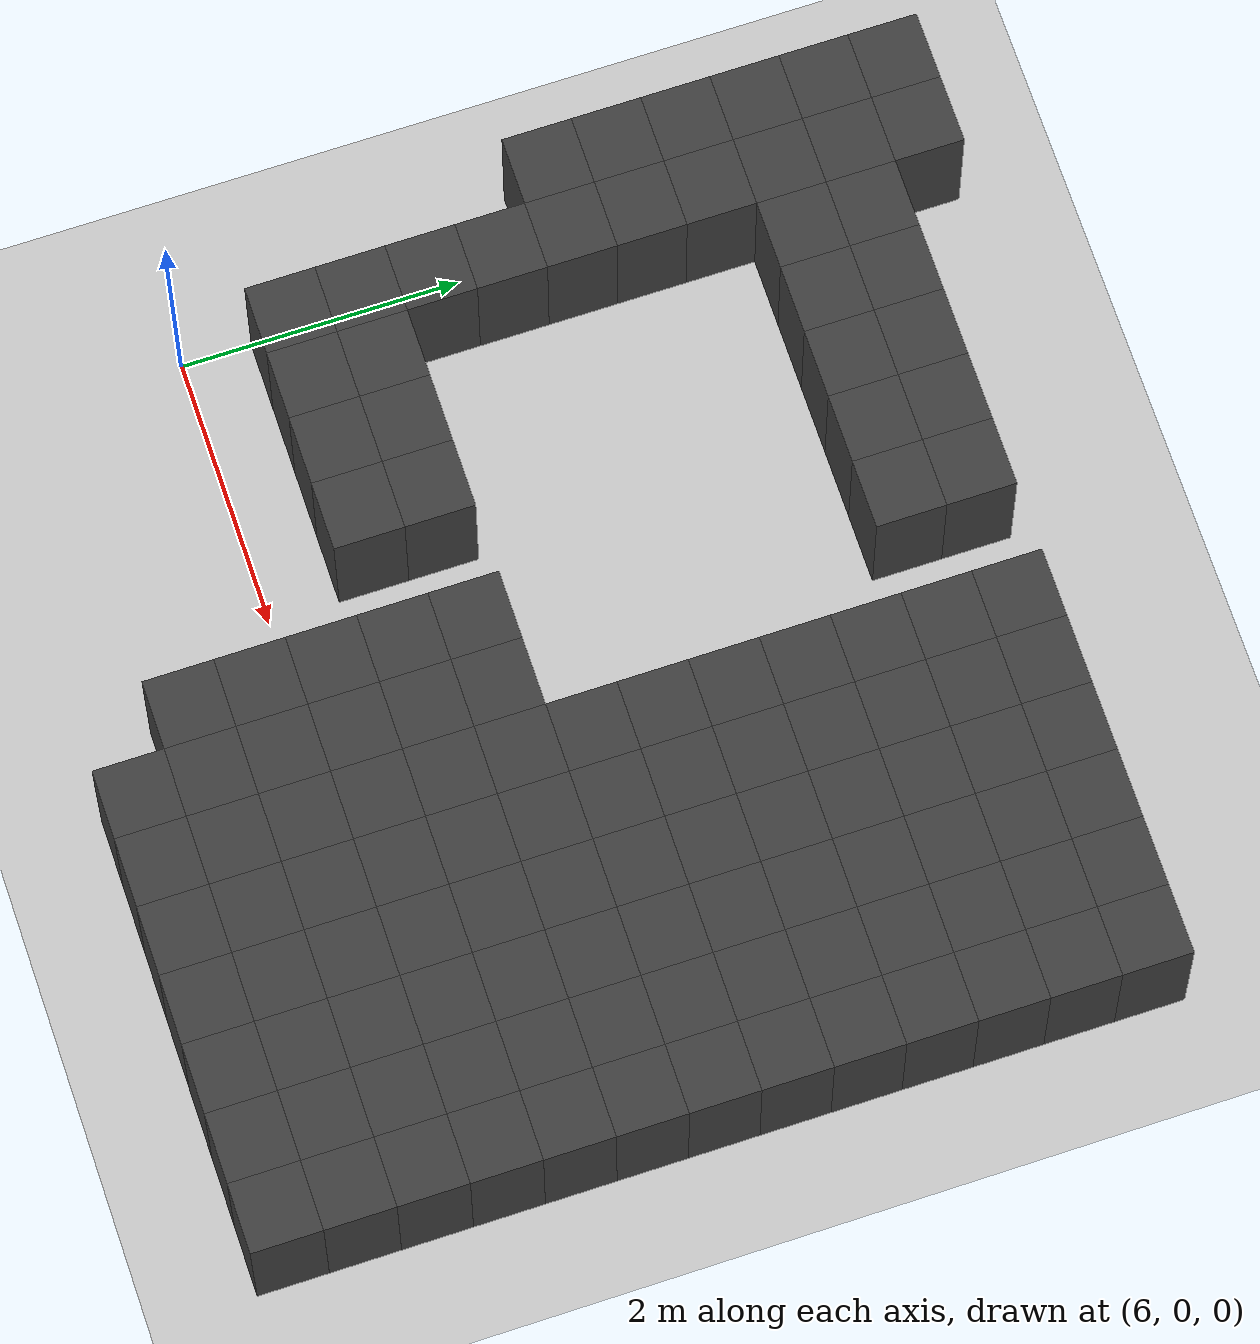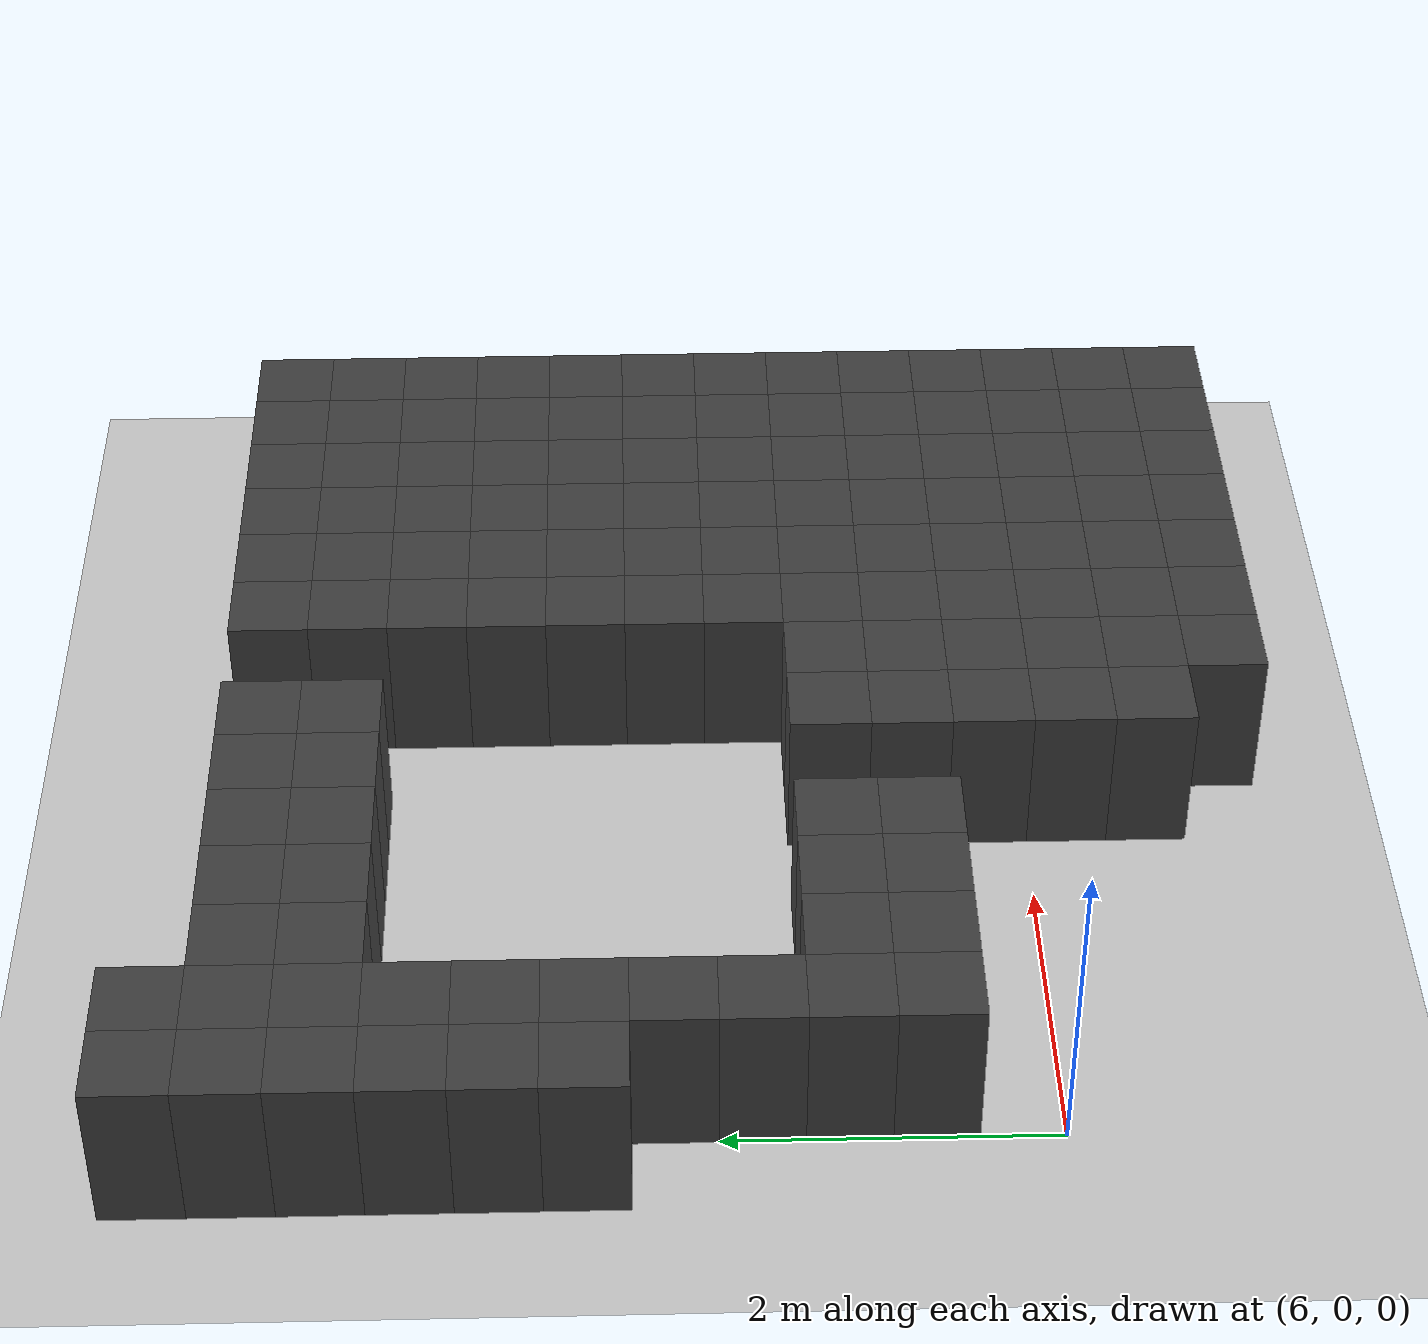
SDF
<sdf version="1.7">
 <world name="map_14706">
  <model name="ground_plane">
   <static>true</static>
   <link name="link">
    <collision name="collision">
     <geometry><plane><normal>0 0 1</normal><size>200 200</size></plane></geometry>
    </collision>
    <visual name="visual">
     <geometry><plane><normal>0 0 1</normal><size>200 200</size></plane></geometry>
     <material><ambient>0.8 0.8 0.8 1</ambient><diffuse>0.8 0.8 0.8 1</diffuse></material>
    </visual>
   </link>
  </model>
  <model name="maze_environment">
   <static>true</static>
   <link name="wall_446">
    <pose>5.750 5.250 0.500 0 0 0</pose>
    <collision name="col"><geometry><box><size>0.5 0.5 1.0</size></box></geometry></collision>
    <visual name="vis">
     <geometry><box><size>0.5 0.5 1.0</size></box></geometry>
     <material><ambient>0.15 0.15 0.15 1</ambient><diffuse>0.25 0.25 0.25 1</diffuse></material>
    </visual>
   </link>
   <link name="wall_447">
    <pose>6.250 5.250 0.500 0 0 0</pose>
    <collision name="col"><geometry><box><size>0.5 0.5 1.0</size></box></geometry></collision>
    <visual name="vis">
     <geometry><box><size>0.5 0.5 1.0</size></box></geometry>
     <material><ambient>0.15 0.15 0.15 1</ambient><diffuse>0.25 0.25 0.25 1</diffuse></material>
    </visual>
   </link>
   <link name="wall_486">
    <pose>5.750 4.750 0.500 0 0 0</pose>
    <collision name="col"><geometry><box><size>0.5 0.5 1.0</size></box></geometry></collision>
    <visual name="vis">
     <geometry><box><size>0.5 0.5 1.0</size></box></geometry>
     <material><ambient>0.15 0.15 0.15 1</ambient><diffuse>0.25 0.25 0.25 1</diffuse></material>
    </visual>
   </link>
   <link name="wall_487">
    <pose>6.250 4.750 0.500 0 0 0</pose>
    <collision name="col"><geometry><box><size>0.5 0.5 1.0</size></box></geometry></collision>
    <visual name="vis">
     <geometry><box><size>0.5 0.5 1.0</size></box></geometry>
     <material><ambient>0.15 0.15 0.15 1</ambient><diffuse>0.25 0.25 0.25 1</diffuse></material>
    </visual>
   </link>
   <link name="wall_488">
    <pose>6.750 4.750 0.500 0 0 0</pose>
    <collision name="col"><geometry><box><size>0.5 0.5 1.0</size></box></geometry></collision>
    <visual name="vis">
     <geometry><box><size>0.5 0.5 1.0</size></box></geometry>
     <material><ambient>0.15 0.15 0.15 1</ambient><diffuse>0.25 0.25 0.25 1</diffuse></material>
    </visual>
   </link>
   <link name="wall_489">
    <pose>7.250 4.750 0.500 0 0 0</pose>
    <collision name="col"><geometry><box><size>0.5 0.5 1.0</size></box></geometry></collision>
    <visual name="vis">
     <geometry><box><size>0.5 0.5 1.0</size></box></geometry>
     <material><ambient>0.15 0.15 0.15 1</ambient><diffuse>0.25 0.25 0.25 1</diffuse></material>
    </visual>
   </link>
   <link name="wall_490">
    <pose>7.750 4.750 0.500 0 0 0</pose>
    <collision name="col"><geometry><box><size>0.5 0.5 1.0</size></box></geometry></collision>
    <visual name="vis">
     <geometry><box><size>0.5 0.5 1.0</size></box></geometry>
     <material><ambient>0.15 0.15 0.15 1</ambient><diffuse>0.25 0.25 0.25 1</diffuse></material>
    </visual>
   </link>
   <link name="wall_491">
    <pose>8.250 4.750 0.500 0 0 0</pose>
    <collision name="col"><geometry><box><size>0.5 0.5 1.0</size></box></geometry></collision>
    <visual name="vis">
     <geometry><box><size>0.5 0.5 1.0</size></box></geometry>
     <material><ambient>0.15 0.15 0.15 1</ambient><diffuse>0.25 0.25 0.25 1</diffuse></material>
    </visual>
   </link>
   <link name="wall_492">
    <pose>8.750 4.750 0.500 0 0 0</pose>
    <collision name="col"><geometry><box><size>0.5 0.5 1.0</size></box></geometry></collision>
    <visual name="vis">
     <geometry><box><size>0.5 0.5 1.0</size></box></geometry>
     <material><ambient>0.15 0.15 0.15 1</ambient><diffuse>0.25 0.25 0.25 1</diffuse></material>
    </visual>
   </link>
   <link name="wall_493">
    <pose>9.750 4.750 0.500 0 0 0</pose>
    <collision name="col"><geometry><box><size>0.5 0.5 1.0</size></box></geometry></collision>
    <visual name="vis">
     <geometry><box><size>0.5 0.5 1.0</size></box></geometry>
     <material><ambient>0.15 0.15 0.15 1</ambient><diffuse>0.25 0.25 0.25 1</diffuse></material>
    </visual>
   </link>
   <link name="wall_494">
    <pose>10.250 4.750 0.500 0 0 0</pose>
    <collision name="col"><geometry><box><size>0.5 0.5 1.0</size></box></geometry></collision>
    <visual name="vis">
     <geometry><box><size>0.5 0.5 1.0</size></box></geometry>
     <material><ambient>0.15 0.15 0.15 1</ambient><diffuse>0.25 0.25 0.25 1</diffuse></material>
    </visual>
   </link>
   <link name="wall_495">
    <pose>10.750 4.750 0.500 0 0 0</pose>
    <collision name="col"><geometry><box><size>0.5 0.5 1.0</size></box></geometry></collision>
    <visual name="vis">
     <geometry><box><size>0.5 0.5 1.0</size></box></geometry>
     <material><ambient>0.15 0.15 0.15 1</ambient><diffuse>0.25 0.25 0.25 1</diffuse></material>
    </visual>
   </link>
   <link name="wall_496">
    <pose>11.250 4.750 0.500 0 0 0</pose>
    <collision name="col"><geometry><box><size>0.5 0.5 1.0</size></box></geometry></collision>
    <visual name="vis">
     <geometry><box><size>0.5 0.5 1.0</size></box></geometry>
     <material><ambient>0.15 0.15 0.15 1</ambient><diffuse>0.25 0.25 0.25 1</diffuse></material>
    </visual>
   </link>
   <link name="wall_497">
    <pose>11.750 4.750 0.500 0 0 0</pose>
    <collision name="col"><geometry><box><size>0.5 0.5 1.0</size></box></geometry></collision>
    <visual name="vis">
     <geometry><box><size>0.5 0.5 1.0</size></box></geometry>
     <material><ambient>0.15 0.15 0.15 1</ambient><diffuse>0.25 0.25 0.25 1</diffuse></material>
    </visual>
   </link>
   <link name="wall_498">
    <pose>12.250 4.750 0.500 0 0 0</pose>
    <collision name="col"><geometry><box><size>0.5 0.5 1.0</size></box></geometry></collision>
    <visual name="vis">
     <geometry><box><size>0.5 0.5 1.0</size></box></geometry>
     <material><ambient>0.15 0.15 0.15 1</ambient><diffuse>0.25 0.25 0.25 1</diffuse></material>
    </visual>
   </link>
   <link name="wall_525">
    <pose>5.750 4.250 0.500 0 0 0</pose>
    <collision name="col"><geometry><box><size>0.5 0.5 1.0</size></box></geometry></collision>
    <visual name="vis">
     <geometry><box><size>0.5 0.5 1.0</size></box></geometry>
     <material><ambient>0.15 0.15 0.15 1</ambient><diffuse>0.25 0.25 0.25 1</diffuse></material>
    </visual>
   </link>
   <link name="wall_526">
    <pose>6.250 4.250 0.500 0 0 0</pose>
    <collision name="col"><geometry><box><size>0.5 0.5 1.0</size></box></geometry></collision>
    <visual name="vis">
     <geometry><box><size>0.5 0.5 1.0</size></box></geometry>
     <material><ambient>0.15 0.15 0.15 1</ambient><diffuse>0.25 0.25 0.25 1</diffuse></material>
    </visual>
   </link>
   <link name="wall_527">
    <pose>6.750 4.250 0.500 0 0 0</pose>
    <collision name="col"><geometry><box><size>0.5 0.5 1.0</size></box></geometry></collision>
    <visual name="vis">
     <geometry><box><size>0.5 0.5 1.0</size></box></geometry>
     <material><ambient>0.15 0.15 0.15 1</ambient><diffuse>0.25 0.25 0.25 1</diffuse></material>
    </visual>
   </link>
   <link name="wall_528">
    <pose>7.250 4.250 0.500 0 0 0</pose>
    <collision name="col"><geometry><box><size>0.5 0.5 1.0</size></box></geometry></collision>
    <visual name="vis">
     <geometry><box><size>0.5 0.5 1.0</size></box></geometry>
     <material><ambient>0.15 0.15 0.15 1</ambient><diffuse>0.25 0.25 0.25 1</diffuse></material>
    </visual>
   </link>
   <link name="wall_529">
    <pose>7.750 4.250 0.500 0 0 0</pose>
    <collision name="col"><geometry><box><size>0.5 0.5 1.0</size></box></geometry></collision>
    <visual name="vis">
     <geometry><box><size>0.5 0.5 1.0</size></box></geometry>
     <material><ambient>0.15 0.15 0.15 1</ambient><diffuse>0.25 0.25 0.25 1</diffuse></material>
    </visual>
   </link>
   <link name="wall_530">
    <pose>8.250 4.250 0.500 0 0 0</pose>
    <collision name="col"><geometry><box><size>0.5 0.5 1.0</size></box></geometry></collision>
    <visual name="vis">
     <geometry><box><size>0.5 0.5 1.0</size></box></geometry>
     <material><ambient>0.15 0.15 0.15 1</ambient><diffuse>0.25 0.25 0.25 1</diffuse></material>
    </visual>
   </link>
   <link name="wall_531">
    <pose>8.750 4.250 0.500 0 0 0</pose>
    <collision name="col"><geometry><box><size>0.5 0.5 1.0</size></box></geometry></collision>
    <visual name="vis">
     <geometry><box><size>0.5 0.5 1.0</size></box></geometry>
     <material><ambient>0.15 0.15 0.15 1</ambient><diffuse>0.25 0.25 0.25 1</diffuse></material>
    </visual>
   </link>
   <link name="wall_532">
    <pose>9.750 4.250 0.500 0 0 0</pose>
    <collision name="col"><geometry><box><size>0.5 0.5 1.0</size></box></geometry></collision>
    <visual name="vis">
     <geometry><box><size>0.5 0.5 1.0</size></box></geometry>
     <material><ambient>0.15 0.15 0.15 1</ambient><diffuse>0.25 0.25 0.25 1</diffuse></material>
    </visual>
   </link>
   <link name="wall_533">
    <pose>10.250 4.250 0.500 0 0 0</pose>
    <collision name="col"><geometry><box><size>0.5 0.5 1.0</size></box></geometry></collision>
    <visual name="vis">
     <geometry><box><size>0.5 0.5 1.0</size></box></geometry>
     <material><ambient>0.15 0.15 0.15 1</ambient><diffuse>0.25 0.25 0.25 1</diffuse></material>
    </visual>
   </link>
   <link name="wall_534">
    <pose>10.750 4.250 0.500 0 0 0</pose>
    <collision name="col"><geometry><box><size>0.5 0.5 1.0</size></box></geometry></collision>
    <visual name="vis">
     <geometry><box><size>0.5 0.5 1.0</size></box></geometry>
     <material><ambient>0.15 0.15 0.15 1</ambient><diffuse>0.25 0.25 0.25 1</diffuse></material>
    </visual>
   </link>
   <link name="wall_535">
    <pose>11.250 4.250 0.500 0 0 0</pose>
    <collision name="col"><geometry><box><size>0.5 0.5 1.0</size></box></geometry></collision>
    <visual name="vis">
     <geometry><box><size>0.5 0.5 1.0</size></box></geometry>
     <material><ambient>0.15 0.15 0.15 1</ambient><diffuse>0.25 0.25 0.25 1</diffuse></material>
    </visual>
   </link>
   <link name="wall_536">
    <pose>11.750 4.250 0.500 0 0 0</pose>
    <collision name="col"><geometry><box><size>0.5 0.5 1.0</size></box></geometry></collision>
    <visual name="vis">
     <geometry><box><size>0.5 0.5 1.0</size></box></geometry>
     <material><ambient>0.15 0.15 0.15 1</ambient><diffuse>0.25 0.25 0.25 1</diffuse></material>
    </visual>
   </link>
   <link name="wall_537">
    <pose>12.250 4.250 0.500 0 0 0</pose>
    <collision name="col"><geometry><box><size>0.5 0.5 1.0</size></box></geometry></collision>
    <visual name="vis">
     <geometry><box><size>0.5 0.5 1.0</size></box></geometry>
     <material><ambient>0.15 0.15 0.15 1</ambient><diffuse>0.25 0.25 0.25 1</diffuse></material>
    </visual>
   </link>
   <link name="wall_560">
    <pose>5.750 3.750 0.500 0 0 0</pose>
    <collision name="col"><geometry><box><size>0.5 0.5 1.0</size></box></geometry></collision>
    <visual name="vis">
     <geometry><box><size>0.5 0.5 1.0</size></box></geometry>
     <material><ambient>0.15 0.15 0.15 1</ambient><diffuse>0.25 0.25 0.25 1</diffuse></material>
    </visual>
   </link>
   <link name="wall_561">
    <pose>6.250 3.750 0.500 0 0 0</pose>
    <collision name="col"><geometry><box><size>0.5 0.5 1.0</size></box></geometry></collision>
    <visual name="vis">
     <geometry><box><size>0.5 0.5 1.0</size></box></geometry>
     <material><ambient>0.15 0.15 0.15 1</ambient><diffuse>0.25 0.25 0.25 1</diffuse></material>
    </visual>
   </link>
   <link name="wall_562">
    <pose>9.750 3.750 0.500 0 0 0</pose>
    <collision name="col"><geometry><box><size>0.5 0.5 1.0</size></box></geometry></collision>
    <visual name="vis">
     <geometry><box><size>0.5 0.5 1.0</size></box></geometry>
     <material><ambient>0.15 0.15 0.15 1</ambient><diffuse>0.25 0.25 0.25 1</diffuse></material>
    </visual>
   </link>
   <link name="wall_563">
    <pose>10.250 3.750 0.500 0 0 0</pose>
    <collision name="col"><geometry><box><size>0.5 0.5 1.0</size></box></geometry></collision>
    <visual name="vis">
     <geometry><box><size>0.5 0.5 1.0</size></box></geometry>
     <material><ambient>0.15 0.15 0.15 1</ambient><diffuse>0.25 0.25 0.25 1</diffuse></material>
    </visual>
   </link>
   <link name="wall_564">
    <pose>10.750 3.750 0.500 0 0 0</pose>
    <collision name="col"><geometry><box><size>0.5 0.5 1.0</size></box></geometry></collision>
    <visual name="vis">
     <geometry><box><size>0.5 0.5 1.0</size></box></geometry>
     <material><ambient>0.15 0.15 0.15 1</ambient><diffuse>0.25 0.25 0.25 1</diffuse></material>
    </visual>
   </link>
   <link name="wall_565">
    <pose>11.250 3.750 0.500 0 0 0</pose>
    <collision name="col"><geometry><box><size>0.5 0.5 1.0</size></box></geometry></collision>
    <visual name="vis">
     <geometry><box><size>0.5 0.5 1.0</size></box></geometry>
     <material><ambient>0.15 0.15 0.15 1</ambient><diffuse>0.25 0.25 0.25 1</diffuse></material>
    </visual>
   </link>
   <link name="wall_566">
    <pose>11.750 3.750 0.500 0 0 0</pose>
    <collision name="col"><geometry><box><size>0.5 0.5 1.0</size></box></geometry></collision>
    <visual name="vis">
     <geometry><box><size>0.5 0.5 1.0</size></box></geometry>
     <material><ambient>0.15 0.15 0.15 1</ambient><diffuse>0.25 0.25 0.25 1</diffuse></material>
    </visual>
   </link>
   <link name="wall_567">
    <pose>12.250 3.750 0.500 0 0 0</pose>
    <collision name="col"><geometry><box><size>0.5 0.5 1.0</size></box></geometry></collision>
    <visual name="vis">
     <geometry><box><size>0.5 0.5 1.0</size></box></geometry>
     <material><ambient>0.15 0.15 0.15 1</ambient><diffuse>0.25 0.25 0.25 1</diffuse></material>
    </visual>
   </link>
   <link name="wall_592">
    <pose>5.750 3.250 0.500 0 0 0</pose>
    <collision name="col"><geometry><box><size>0.5 0.5 1.0</size></box></geometry></collision>
    <visual name="vis">
     <geometry><box><size>0.5 0.5 1.0</size></box></geometry>
     <material><ambient>0.15 0.15 0.15 1</ambient><diffuse>0.25 0.25 0.25 1</diffuse></material>
    </visual>
   </link>
   <link name="wall_593">
    <pose>6.250 3.250 0.500 0 0 0</pose>
    <collision name="col"><geometry><box><size>0.5 0.5 1.0</size></box></geometry></collision>
    <visual name="vis">
     <geometry><box><size>0.5 0.5 1.0</size></box></geometry>
     <material><ambient>0.15 0.15 0.15 1</ambient><diffuse>0.25 0.25 0.25 1</diffuse></material>
    </visual>
   </link>
   <link name="wall_594">
    <pose>9.750 3.250 0.500 0 0 0</pose>
    <collision name="col"><geometry><box><size>0.5 0.5 1.0</size></box></geometry></collision>
    <visual name="vis">
     <geometry><box><size>0.5 0.5 1.0</size></box></geometry>
     <material><ambient>0.15 0.15 0.15 1</ambient><diffuse>0.25 0.25 0.25 1</diffuse></material>
    </visual>
   </link>
   <link name="wall_595">
    <pose>10.250 3.250 0.500 0 0 0</pose>
    <collision name="col"><geometry><box><size>0.5 0.5 1.0</size></box></geometry></collision>
    <visual name="vis">
     <geometry><box><size>0.5 0.5 1.0</size></box></geometry>
     <material><ambient>0.15 0.15 0.15 1</ambient><diffuse>0.25 0.25 0.25 1</diffuse></material>
    </visual>
   </link>
   <link name="wall_596">
    <pose>10.750 3.250 0.500 0 0 0</pose>
    <collision name="col"><geometry><box><size>0.5 0.5 1.0</size></box></geometry></collision>
    <visual name="vis">
     <geometry><box><size>0.5 0.5 1.0</size></box></geometry>
     <material><ambient>0.15 0.15 0.15 1</ambient><diffuse>0.25 0.25 0.25 1</diffuse></material>
    </visual>
   </link>
   <link name="wall_597">
    <pose>11.250 3.250 0.500 0 0 0</pose>
    <collision name="col"><geometry><box><size>0.5 0.5 1.0</size></box></geometry></collision>
    <visual name="vis">
     <geometry><box><size>0.5 0.5 1.0</size></box></geometry>
     <material><ambient>0.15 0.15 0.15 1</ambient><diffuse>0.25 0.25 0.25 1</diffuse></material>
    </visual>
   </link>
   <link name="wall_598">
    <pose>11.750 3.250 0.500 0 0 0</pose>
    <collision name="col"><geometry><box><size>0.5 0.5 1.0</size></box></geometry></collision>
    <visual name="vis">
     <geometry><box><size>0.5 0.5 1.0</size></box></geometry>
     <material><ambient>0.15 0.15 0.15 1</ambient><diffuse>0.25 0.25 0.25 1</diffuse></material>
    </visual>
   </link>
   <link name="wall_599">
    <pose>12.250 3.250 0.500 0 0 0</pose>
    <collision name="col"><geometry><box><size>0.5 0.5 1.0</size></box></geometry></collision>
    <visual name="vis">
     <geometry><box><size>0.5 0.5 1.0</size></box></geometry>
     <material><ambient>0.15 0.15 0.15 1</ambient><diffuse>0.25 0.25 0.25 1</diffuse></material>
    </visual>
   </link>
   <link name="wall_623">
    <pose>5.750 2.750 0.500 0 0 0</pose>
    <collision name="col"><geometry><box><size>0.5 0.5 1.0</size></box></geometry></collision>
    <visual name="vis">
     <geometry><box><size>0.5 0.5 1.0</size></box></geometry>
     <material><ambient>0.15 0.15 0.15 1</ambient><diffuse>0.25 0.25 0.25 1</diffuse></material>
    </visual>
   </link>
   <link name="wall_624">
    <pose>6.250 2.750 0.500 0 0 0</pose>
    <collision name="col"><geometry><box><size>0.5 0.5 1.0</size></box></geometry></collision>
    <visual name="vis">
     <geometry><box><size>0.5 0.5 1.0</size></box></geometry>
     <material><ambient>0.15 0.15 0.15 1</ambient><diffuse>0.25 0.25 0.25 1</diffuse></material>
    </visual>
   </link>
   <link name="wall_625">
    <pose>9.750 2.750 0.500 0 0 0</pose>
    <collision name="col"><geometry><box><size>0.5 0.5 1.0</size></box></geometry></collision>
    <visual name="vis">
     <geometry><box><size>0.5 0.5 1.0</size></box></geometry>
     <material><ambient>0.15 0.15 0.15 1</ambient><diffuse>0.25 0.25 0.25 1</diffuse></material>
    </visual>
   </link>
   <link name="wall_626">
    <pose>10.250 2.750 0.500 0 0 0</pose>
    <collision name="col"><geometry><box><size>0.5 0.5 1.0</size></box></geometry></collision>
    <visual name="vis">
     <geometry><box><size>0.5 0.5 1.0</size></box></geometry>
     <material><ambient>0.15 0.15 0.15 1</ambient><diffuse>0.25 0.25 0.25 1</diffuse></material>
    </visual>
   </link>
   <link name="wall_627">
    <pose>10.750 2.750 0.500 0 0 0</pose>
    <collision name="col"><geometry><box><size>0.5 0.5 1.0</size></box></geometry></collision>
    <visual name="vis">
     <geometry><box><size>0.5 0.5 1.0</size></box></geometry>
     <material><ambient>0.15 0.15 0.15 1</ambient><diffuse>0.25 0.25 0.25 1</diffuse></material>
    </visual>
   </link>
   <link name="wall_628">
    <pose>11.250 2.750 0.500 0 0 0</pose>
    <collision name="col"><geometry><box><size>0.5 0.5 1.0</size></box></geometry></collision>
    <visual name="vis">
     <geometry><box><size>0.5 0.5 1.0</size></box></geometry>
     <material><ambient>0.15 0.15 0.15 1</ambient><diffuse>0.25 0.25 0.25 1</diffuse></material>
    </visual>
   </link>
   <link name="wall_629">
    <pose>11.750 2.750 0.500 0 0 0</pose>
    <collision name="col"><geometry><box><size>0.5 0.5 1.0</size></box></geometry></collision>
    <visual name="vis">
     <geometry><box><size>0.5 0.5 1.0</size></box></geometry>
     <material><ambient>0.15 0.15 0.15 1</ambient><diffuse>0.25 0.25 0.25 1</diffuse></material>
    </visual>
   </link>
   <link name="wall_630">
    <pose>12.250 2.750 0.500 0 0 0</pose>
    <collision name="col"><geometry><box><size>0.5 0.5 1.0</size></box></geometry></collision>
    <visual name="vis">
     <geometry><box><size>0.5 0.5 1.0</size></box></geometry>
     <material><ambient>0.15 0.15 0.15 1</ambient><diffuse>0.25 0.25 0.25 1</diffuse></material>
    </visual>
   </link>
   <link name="wall_655">
    <pose>6.250 2.250 0.500 0 0 0</pose>
    <collision name="col"><geometry><box><size>0.5 0.5 1.0</size></box></geometry></collision>
    <visual name="vis">
     <geometry><box><size>0.5 0.5 1.0</size></box></geometry>
     <material><ambient>0.15 0.15 0.15 1</ambient><diffuse>0.25 0.25 0.25 1</diffuse></material>
    </visual>
   </link>
   <link name="wall_656">
    <pose>9.750 2.250 0.500 0 0 0</pose>
    <collision name="col"><geometry><box><size>0.5 0.5 1.0</size></box></geometry></collision>
    <visual name="vis">
     <geometry><box><size>0.5 0.5 1.0</size></box></geometry>
     <material><ambient>0.15 0.15 0.15 1</ambient><diffuse>0.25 0.25 0.25 1</diffuse></material>
    </visual>
   </link>
   <link name="wall_657">
    <pose>10.250 2.250 0.500 0 0 0</pose>
    <collision name="col"><geometry><box><size>0.5 0.5 1.0</size></box></geometry></collision>
    <visual name="vis">
     <geometry><box><size>0.5 0.5 1.0</size></box></geometry>
     <material><ambient>0.15 0.15 0.15 1</ambient><diffuse>0.25 0.25 0.25 1</diffuse></material>
    </visual>
   </link>
   <link name="wall_658">
    <pose>10.750 2.250 0.500 0 0 0</pose>
    <collision name="col"><geometry><box><size>0.5 0.5 1.0</size></box></geometry></collision>
    <visual name="vis">
     <geometry><box><size>0.5 0.5 1.0</size></box></geometry>
     <material><ambient>0.15 0.15 0.15 1</ambient><diffuse>0.25 0.25 0.25 1</diffuse></material>
    </visual>
   </link>
   <link name="wall_659">
    <pose>11.250 2.250 0.500 0 0 0</pose>
    <collision name="col"><geometry><box><size>0.5 0.5 1.0</size></box></geometry></collision>
    <visual name="vis">
     <geometry><box><size>0.5 0.5 1.0</size></box></geometry>
     <material><ambient>0.15 0.15 0.15 1</ambient><diffuse>0.25 0.25 0.25 1</diffuse></material>
    </visual>
   </link>
   <link name="wall_660">
    <pose>11.750 2.250 0.500 0 0 0</pose>
    <collision name="col"><geometry><box><size>0.5 0.5 1.0</size></box></geometry></collision>
    <visual name="vis">
     <geometry><box><size>0.5 0.5 1.0</size></box></geometry>
     <material><ambient>0.15 0.15 0.15 1</ambient><diffuse>0.25 0.25 0.25 1</diffuse></material>
    </visual>
   </link>
   <link name="wall_661">
    <pose>12.250 2.250 0.500 0 0 0</pose>
    <collision name="col"><geometry><box><size>0.5 0.5 1.0</size></box></geometry></collision>
    <visual name="vis">
     <geometry><box><size>0.5 0.5 1.0</size></box></geometry>
     <material><ambient>0.15 0.15 0.15 1</ambient><diffuse>0.25 0.25 0.25 1</diffuse></material>
    </visual>
   </link>
   <link name="wall_691">
    <pose>6.250 1.750 0.500 0 0 0</pose>
    <collision name="col"><geometry><box><size>0.5 0.5 1.0</size></box></geometry></collision>
    <visual name="vis">
     <geometry><box><size>0.5 0.5 1.0</size></box></geometry>
     <material><ambient>0.15 0.15 0.15 1</ambient><diffuse>0.25 0.25 0.25 1</diffuse></material>
    </visual>
   </link>
   <link name="wall_692">
    <pose>9.750 1.750 0.500 0 0 0</pose>
    <collision name="col"><geometry><box><size>0.5 0.5 1.0</size></box></geometry></collision>
    <visual name="vis">
     <geometry><box><size>0.5 0.5 1.0</size></box></geometry>
     <material><ambient>0.15 0.15 0.15 1</ambient><diffuse>0.25 0.25 0.25 1</diffuse></material>
    </visual>
   </link>
   <link name="wall_693">
    <pose>10.250 1.750 0.500 0 0 0</pose>
    <collision name="col"><geometry><box><size>0.5 0.5 1.0</size></box></geometry></collision>
    <visual name="vis">
     <geometry><box><size>0.5 0.5 1.0</size></box></geometry>
     <material><ambient>0.15 0.15 0.15 1</ambient><diffuse>0.25 0.25 0.25 1</diffuse></material>
    </visual>
   </link>
   <link name="wall_694">
    <pose>10.750 1.750 0.500 0 0 0</pose>
    <collision name="col"><geometry><box><size>0.5 0.5 1.0</size></box></geometry></collision>
    <visual name="vis">
     <geometry><box><size>0.5 0.5 1.0</size></box></geometry>
     <material><ambient>0.15 0.15 0.15 1</ambient><diffuse>0.25 0.25 0.25 1</diffuse></material>
    </visual>
   </link>
   <link name="wall_695">
    <pose>11.250 1.750 0.500 0 0 0</pose>
    <collision name="col"><geometry><box><size>0.5 0.5 1.0</size></box></geometry></collision>
    <visual name="vis">
     <geometry><box><size>0.5 0.5 1.0</size></box></geometry>
     <material><ambient>0.15 0.15 0.15 1</ambient><diffuse>0.25 0.25 0.25 1</diffuse></material>
    </visual>
   </link>
   <link name="wall_696">
    <pose>11.750 1.750 0.500 0 0 0</pose>
    <collision name="col"><geometry><box><size>0.5 0.5 1.0</size></box></geometry></collision>
    <visual name="vis">
     <geometry><box><size>0.5 0.5 1.0</size></box></geometry>
     <material><ambient>0.15 0.15 0.15 1</ambient><diffuse>0.25 0.25 0.25 1</diffuse></material>
    </visual>
   </link>
   <link name="wall_697">
    <pose>12.250 1.750 0.500 0 0 0</pose>
    <collision name="col"><geometry><box><size>0.5 0.5 1.0</size></box></geometry></collision>
    <visual name="vis">
     <geometry><box><size>0.5 0.5 1.0</size></box></geometry>
     <material><ambient>0.15 0.15 0.15 1</ambient><diffuse>0.25 0.25 0.25 1</diffuse></material>
    </visual>
   </link>
   <link name="wall_727">
    <pose>6.250 1.250 0.500 0 0 0</pose>
    <collision name="col"><geometry><box><size>0.5 0.5 1.0</size></box></geometry></collision>
    <visual name="vis">
     <geometry><box><size>0.5 0.5 1.0</size></box></geometry>
     <material><ambient>0.15 0.15 0.15 1</ambient><diffuse>0.25 0.25 0.25 1</diffuse></material>
    </visual>
   </link>
   <link name="wall_728">
    <pose>6.750 1.250 0.500 0 0 0</pose>
    <collision name="col"><geometry><box><size>0.5 0.5 1.0</size></box></geometry></collision>
    <visual name="vis">
     <geometry><box><size>0.5 0.5 1.0</size></box></geometry>
     <material><ambient>0.15 0.15 0.15 1</ambient><diffuse>0.25 0.25 0.25 1</diffuse></material>
    </visual>
   </link>
   <link name="wall_729">
    <pose>7.250 1.250 0.500 0 0 0</pose>
    <collision name="col"><geometry><box><size>0.5 0.5 1.0</size></box></geometry></collision>
    <visual name="vis">
     <geometry><box><size>0.5 0.5 1.0</size></box></geometry>
     <material><ambient>0.15 0.15 0.15 1</ambient><diffuse>0.25 0.25 0.25 1</diffuse></material>
    </visual>
   </link>
   <link name="wall_730">
    <pose>7.750 1.250 0.500 0 0 0</pose>
    <collision name="col"><geometry><box><size>0.5 0.5 1.0</size></box></geometry></collision>
    <visual name="vis">
     <geometry><box><size>0.5 0.5 1.0</size></box></geometry>
     <material><ambient>0.15 0.15 0.15 1</ambient><diffuse>0.25 0.25 0.25 1</diffuse></material>
    </visual>
   </link>
   <link name="wall_731">
    <pose>8.750 1.250 0.500 0 0 0</pose>
    <collision name="col"><geometry><box><size>0.5 0.5 1.0</size></box></geometry></collision>
    <visual name="vis">
     <geometry><box><size>0.5 0.5 1.0</size></box></geometry>
     <material><ambient>0.15 0.15 0.15 1</ambient><diffuse>0.25 0.25 0.25 1</diffuse></material>
    </visual>
   </link>
   <link name="wall_732">
    <pose>9.250 1.250 0.500 0 0 0</pose>
    <collision name="col"><geometry><box><size>0.5 0.5 1.0</size></box></geometry></collision>
    <visual name="vis">
     <geometry><box><size>0.5 0.5 1.0</size></box></geometry>
     <material><ambient>0.15 0.15 0.15 1</ambient><diffuse>0.25 0.25 0.25 1</diffuse></material>
    </visual>
   </link>
   <link name="wall_733">
    <pose>9.750 1.250 0.500 0 0 0</pose>
    <collision name="col"><geometry><box><size>0.5 0.5 1.0</size></box></geometry></collision>
    <visual name="vis">
     <geometry><box><size>0.5 0.5 1.0</size></box></geometry>
     <material><ambient>0.15 0.15 0.15 1</ambient><diffuse>0.25 0.25 0.25 1</diffuse></material>
    </visual>
   </link>
   <link name="wall_734">
    <pose>10.250 1.250 0.500 0 0 0</pose>
    <collision name="col"><geometry><box><size>0.5 0.5 1.0</size></box></geometry></collision>
    <visual name="vis">
     <geometry><box><size>0.5 0.5 1.0</size></box></geometry>
     <material><ambient>0.15 0.15 0.15 1</ambient><diffuse>0.25 0.25 0.25 1</diffuse></material>
    </visual>
   </link>
   <link name="wall_735">
    <pose>10.750 1.250 0.500 0 0 0</pose>
    <collision name="col"><geometry><box><size>0.5 0.5 1.0</size></box></geometry></collision>
    <visual name="vis">
     <geometry><box><size>0.5 0.5 1.0</size></box></geometry>
     <material><ambient>0.15 0.15 0.15 1</ambient><diffuse>0.25 0.25 0.25 1</diffuse></material>
    </visual>
   </link>
   <link name="wall_736">
    <pose>11.250 1.250 0.500 0 0 0</pose>
    <collision name="col"><geometry><box><size>0.5 0.5 1.0</size></box></geometry></collision>
    <visual name="vis">
     <geometry><box><size>0.5 0.5 1.0</size></box></geometry>
     <material><ambient>0.15 0.15 0.15 1</ambient><diffuse>0.25 0.25 0.25 1</diffuse></material>
    </visual>
   </link>
   <link name="wall_737">
    <pose>11.750 1.250 0.500 0 0 0</pose>
    <collision name="col"><geometry><box><size>0.5 0.5 1.0</size></box></geometry></collision>
    <visual name="vis">
     <geometry><box><size>0.5 0.5 1.0</size></box></geometry>
     <material><ambient>0.15 0.15 0.15 1</ambient><diffuse>0.25 0.25 0.25 1</diffuse></material>
    </visual>
   </link>
   <link name="wall_738">
    <pose>12.250 1.250 0.500 0 0 0</pose>
    <collision name="col"><geometry><box><size>0.5 0.5 1.0</size></box></geometry></collision>
    <visual name="vis">
     <geometry><box><size>0.5 0.5 1.0</size></box></geometry>
     <material><ambient>0.15 0.15 0.15 1</ambient><diffuse>0.25 0.25 0.25 1</diffuse></material>
    </visual>
   </link>
   <link name="wall_768">
    <pose>6.250 0.750 0.500 0 0 0</pose>
    <collision name="col"><geometry><box><size>0.5 0.5 1.0</size></box></geometry></collision>
    <visual name="vis">
     <geometry><box><size>0.5 0.5 1.0</size></box></geometry>
     <material><ambient>0.15 0.15 0.15 1</ambient><diffuse>0.25 0.25 0.25 1</diffuse></material>
    </visual>
   </link>
   <link name="wall_769">
    <pose>6.750 0.750 0.500 0 0 0</pose>
    <collision name="col"><geometry><box><size>0.5 0.5 1.0</size></box></geometry></collision>
    <visual name="vis">
     <geometry><box><size>0.5 0.5 1.0</size></box></geometry>
     <material><ambient>0.15 0.15 0.15 1</ambient><diffuse>0.25 0.25 0.25 1</diffuse></material>
    </visual>
   </link>
   <link name="wall_770">
    <pose>7.250 0.750 0.500 0 0 0</pose>
    <collision name="col"><geometry><box><size>0.5 0.5 1.0</size></box></geometry></collision>
    <visual name="vis">
     <geometry><box><size>0.5 0.5 1.0</size></box></geometry>
     <material><ambient>0.15 0.15 0.15 1</ambient><diffuse>0.25 0.25 0.25 1</diffuse></material>
    </visual>
   </link>
   <link name="wall_771">
    <pose>7.750 0.750 0.500 0 0 0</pose>
    <collision name="col"><geometry><box><size>0.5 0.5 1.0</size></box></geometry></collision>
    <visual name="vis">
     <geometry><box><size>0.5 0.5 1.0</size></box></geometry>
     <material><ambient>0.15 0.15 0.15 1</ambient><diffuse>0.25 0.25 0.25 1</diffuse></material>
    </visual>
   </link>
   <link name="wall_772">
    <pose>8.750 0.750 0.500 0 0 0</pose>
    <collision name="col"><geometry><box><size>0.5 0.5 1.0</size></box></geometry></collision>
    <visual name="vis">
     <geometry><box><size>0.5 0.5 1.0</size></box></geometry>
     <material><ambient>0.15 0.15 0.15 1</ambient><diffuse>0.25 0.25 0.25 1</diffuse></material>
    </visual>
   </link>
   <link name="wall_773">
    <pose>9.250 0.750 0.500 0 0 0</pose>
    <collision name="col"><geometry><box><size>0.5 0.5 1.0</size></box></geometry></collision>
    <visual name="vis">
     <geometry><box><size>0.5 0.5 1.0</size></box></geometry>
     <material><ambient>0.15 0.15 0.15 1</ambient><diffuse>0.25 0.25 0.25 1</diffuse></material>
    </visual>
   </link>
   <link name="wall_774">
    <pose>9.750 0.750 0.500 0 0 0</pose>
    <collision name="col"><geometry><box><size>0.5 0.5 1.0</size></box></geometry></collision>
    <visual name="vis">
     <geometry><box><size>0.5 0.5 1.0</size></box></geometry>
     <material><ambient>0.15 0.15 0.15 1</ambient><diffuse>0.25 0.25 0.25 1</diffuse></material>
    </visual>
   </link>
   <link name="wall_775">
    <pose>10.250 0.750 0.500 0 0 0</pose>
    <collision name="col"><geometry><box><size>0.5 0.5 1.0</size></box></geometry></collision>
    <visual name="vis">
     <geometry><box><size>0.5 0.5 1.0</size></box></geometry>
     <material><ambient>0.15 0.15 0.15 1</ambient><diffuse>0.25 0.25 0.25 1</diffuse></material>
    </visual>
   </link>
   <link name="wall_776">
    <pose>10.750 0.750 0.500 0 0 0</pose>
    <collision name="col"><geometry><box><size>0.5 0.5 1.0</size></box></geometry></collision>
    <visual name="vis">
     <geometry><box><size>0.5 0.5 1.0</size></box></geometry>
     <material><ambient>0.15 0.15 0.15 1</ambient><diffuse>0.25 0.25 0.25 1</diffuse></material>
    </visual>
   </link>
   <link name="wall_777">
    <pose>11.250 0.750 0.500 0 0 0</pose>
    <collision name="col"><geometry><box><size>0.5 0.5 1.0</size></box></geometry></collision>
    <visual name="vis">
     <geometry><box><size>0.5 0.5 1.0</size></box></geometry>
     <material><ambient>0.15 0.15 0.15 1</ambient><diffuse>0.25 0.25 0.25 1</diffuse></material>
    </visual>
   </link>
   <link name="wall_778">
    <pose>11.750 0.750 0.500 0 0 0</pose>
    <collision name="col"><geometry><box><size>0.5 0.5 1.0</size></box></geometry></collision>
    <visual name="vis">
     <geometry><box><size>0.5 0.5 1.0</size></box></geometry>
     <material><ambient>0.15 0.15 0.15 1</ambient><diffuse>0.25 0.25 0.25 1</diffuse></material>
    </visual>
   </link>
   <link name="wall_779">
    <pose>12.250 0.750 0.500 0 0 0</pose>
    <collision name="col"><geometry><box><size>0.5 0.5 1.0</size></box></geometry></collision>
    <visual name="vis">
     <geometry><box><size>0.5 0.5 1.0</size></box></geometry>
     <material><ambient>0.15 0.15 0.15 1</ambient><diffuse>0.25 0.25 0.25 1</diffuse></material>
    </visual>
   </link>
   <link name="wall_807">
    <pose>8.750 0.250 0.500 0 0 0</pose>
    <collision name="col"><geometry><box><size>0.5 0.5 1.0</size></box></geometry></collision>
    <visual name="vis">
     <geometry><box><size>0.5 0.5 1.0</size></box></geometry>
     <material><ambient>0.15 0.15 0.15 1</ambient><diffuse>0.25 0.25 0.25 1</diffuse></material>
    </visual>
   </link>
   <link name="wall_808">
    <pose>9.250 0.250 0.500 0 0 0</pose>
    <collision name="col"><geometry><box><size>0.5 0.5 1.0</size></box></geometry></collision>
    <visual name="vis">
     <geometry><box><size>0.5 0.5 1.0</size></box></geometry>
     <material><ambient>0.15 0.15 0.15 1</ambient><diffuse>0.25 0.25 0.25 1</diffuse></material>
    </visual>
   </link>
   <link name="wall_809">
    <pose>9.750 0.250 0.500 0 0 0</pose>
    <collision name="col"><geometry><box><size>0.5 0.5 1.0</size></box></geometry></collision>
    <visual name="vis">
     <geometry><box><size>0.5 0.5 1.0</size></box></geometry>
     <material><ambient>0.15 0.15 0.15 1</ambient><diffuse>0.25 0.25 0.25 1</diffuse></material>
    </visual>
   </link>
   <link name="wall_810">
    <pose>10.250 0.250 0.500 0 0 0</pose>
    <collision name="col"><geometry><box><size>0.5 0.5 1.0</size></box></geometry></collision>
    <visual name="vis">
     <geometry><box><size>0.5 0.5 1.0</size></box></geometry>
     <material><ambient>0.15 0.15 0.15 1</ambient><diffuse>0.25 0.25 0.25 1</diffuse></material>
    </visual>
   </link>
   <link name="wall_811">
    <pose>10.750 0.250 0.500 0 0 0</pose>
    <collision name="col"><geometry><box><size>0.5 0.5 1.0</size></box></geometry></collision>
    <visual name="vis">
     <geometry><box><size>0.5 0.5 1.0</size></box></geometry>
     <material><ambient>0.15 0.15 0.15 1</ambient><diffuse>0.25 0.25 0.25 1</diffuse></material>
    </visual>
   </link>
   <link name="wall_812">
    <pose>11.250 0.250 0.500 0 0 0</pose>
    <collision name="col"><geometry><box><size>0.5 0.5 1.0</size></box></geometry></collision>
    <visual name="vis">
     <geometry><box><size>0.5 0.5 1.0</size></box></geometry>
     <material><ambient>0.15 0.15 0.15 1</ambient><diffuse>0.25 0.25 0.25 1</diffuse></material>
    </visual>
   </link>
   <link name="wall_813">
    <pose>11.750 0.250 0.500 0 0 0</pose>
    <collision name="col"><geometry><box><size>0.5 0.5 1.0</size></box></geometry></collision>
    <visual name="vis">
     <geometry><box><size>0.5 0.5 1.0</size></box></geometry>
     <material><ambient>0.15 0.15 0.15 1</ambient><diffuse>0.25 0.25 0.25 1</diffuse></material>
    </visual>
   </link>
   <link name="wall_814">
    <pose>12.250 0.250 0.500 0 0 0</pose>
    <collision name="col"><geometry><box><size>0.5 0.5 1.0</size></box></geometry></collision>
    <visual name="vis">
     <geometry><box><size>0.5 0.5 1.0</size></box></geometry>
     <material><ambient>0.15 0.15 0.15 1</ambient><diffuse>0.25 0.25 0.25 1</diffuse></material>
    </visual>
   </link>
   <link name="wall_849">
    <pose>8.750 -0.250 0.500 0 0 0</pose>
    <collision name="col"><geometry><box><size>0.5 0.5 1.0</size></box></geometry></collision>
    <visual name="vis">
     <geometry><box><size>0.5 0.5 1.0</size></box></geometry>
     <material><ambient>0.15 0.15 0.15 1</ambient><diffuse>0.25 0.25 0.25 1</diffuse></material>
    </visual>
   </link>
   <link name="wall_850">
    <pose>9.250 -0.250 0.500 0 0 0</pose>
    <collision name="col"><geometry><box><size>0.5 0.5 1.0</size></box></geometry></collision>
    <visual name="vis">
     <geometry><box><size>0.5 0.5 1.0</size></box></geometry>
     <material><ambient>0.15 0.15 0.15 1</ambient><diffuse>0.25 0.25 0.25 1</diffuse></material>
    </visual>
   </link>
   <link name="wall_851">
    <pose>9.750 -0.250 0.500 0 0 0</pose>
    <collision name="col"><geometry><box><size>0.5 0.5 1.0</size></box></geometry></collision>
    <visual name="vis">
     <geometry><box><size>0.5 0.5 1.0</size></box></geometry>
     <material><ambient>0.15 0.15 0.15 1</ambient><diffuse>0.25 0.25 0.25 1</diffuse></material>
    </visual>
   </link>
   <link name="wall_852">
    <pose>10.250 -0.250 0.500 0 0 0</pose>
    <collision name="col"><geometry><box><size>0.5 0.5 1.0</size></box></geometry></collision>
    <visual name="vis">
     <geometry><box><size>0.5 0.5 1.0</size></box></geometry>
     <material><ambient>0.15 0.15 0.15 1</ambient><diffuse>0.25 0.25 0.25 1</diffuse></material>
    </visual>
   </link>
   <link name="wall_853">
    <pose>10.750 -0.250 0.500 0 0 0</pose>
    <collision name="col"><geometry><box><size>0.5 0.5 1.0</size></box></geometry></collision>
    <visual name="vis">
     <geometry><box><size>0.5 0.5 1.0</size></box></geometry>
     <material><ambient>0.15 0.15 0.15 1</ambient><diffuse>0.25 0.25 0.25 1</diffuse></material>
    </visual>
   </link>
   <link name="wall_854">
    <pose>11.250 -0.250 0.500 0 0 0</pose>
    <collision name="col"><geometry><box><size>0.5 0.5 1.0</size></box></geometry></collision>
    <visual name="vis">
     <geometry><box><size>0.5 0.5 1.0</size></box></geometry>
     <material><ambient>0.15 0.15 0.15 1</ambient><diffuse>0.25 0.25 0.25 1</diffuse></material>
    </visual>
   </link>
   <link name="wall_855">
    <pose>11.750 -0.250 0.500 0 0 0</pose>
    <collision name="col"><geometry><box><size>0.5 0.5 1.0</size></box></geometry></collision>
    <visual name="vis">
     <geometry><box><size>0.5 0.5 1.0</size></box></geometry>
     <material><ambient>0.15 0.15 0.15 1</ambient><diffuse>0.25 0.25 0.25 1</diffuse></material>
    </visual>
   </link>
   <link name="wall_856">
    <pose>12.250 -0.250 0.500 0 0 0</pose>
    <collision name="col"><geometry><box><size>0.5 0.5 1.0</size></box></geometry></collision>
    <visual name="vis">
     <geometry><box><size>0.5 0.5 1.0</size></box></geometry>
     <material><ambient>0.15 0.15 0.15 1</ambient><diffuse>0.25 0.25 0.25 1</diffuse></material>
    </visual>
   </link>
   <link name="wall_891">
    <pose>8.750 -0.750 0.500 0 0 0</pose>
    <collision name="col"><geometry><box><size>0.5 0.5 1.0</size></box></geometry></collision>
    <visual name="vis">
     <geometry><box><size>0.5 0.5 1.0</size></box></geometry>
     <material><ambient>0.15 0.15 0.15 1</ambient><diffuse>0.25 0.25 0.25 1</diffuse></material>
    </visual>
   </link>
   <link name="wall_892">
    <pose>9.250 -0.750 0.500 0 0 0</pose>
    <collision name="col"><geometry><box><size>0.5 0.5 1.0</size></box></geometry></collision>
    <visual name="vis">
     <geometry><box><size>0.5 0.5 1.0</size></box></geometry>
     <material><ambient>0.15 0.15 0.15 1</ambient><diffuse>0.25 0.25 0.25 1</diffuse></material>
    </visual>
   </link>
   <link name="wall_893">
    <pose>9.750 -0.750 0.500 0 0 0</pose>
    <collision name="col"><geometry><box><size>0.5 0.5 1.0</size></box></geometry></collision>
    <visual name="vis">
     <geometry><box><size>0.5 0.5 1.0</size></box></geometry>
     <material><ambient>0.15 0.15 0.15 1</ambient><diffuse>0.25 0.25 0.25 1</diffuse></material>
    </visual>
   </link>
   <link name="wall_894">
    <pose>10.250 -0.750 0.500 0 0 0</pose>
    <collision name="col"><geometry><box><size>0.5 0.5 1.0</size></box></geometry></collision>
    <visual name="vis">
     <geometry><box><size>0.5 0.5 1.0</size></box></geometry>
     <material><ambient>0.15 0.15 0.15 1</ambient><diffuse>0.25 0.25 0.25 1</diffuse></material>
    </visual>
   </link>
   <link name="wall_895">
    <pose>10.750 -0.750 0.500 0 0 0</pose>
    <collision name="col"><geometry><box><size>0.5 0.5 1.0</size></box></geometry></collision>
    <visual name="vis">
     <geometry><box><size>0.5 0.5 1.0</size></box></geometry>
     <material><ambient>0.15 0.15 0.15 1</ambient><diffuse>0.25 0.25 0.25 1</diffuse></material>
    </visual>
   </link>
   <link name="wall_896">
    <pose>11.250 -0.750 0.500 0 0 0</pose>
    <collision name="col"><geometry><box><size>0.5 0.5 1.0</size></box></geometry></collision>
    <visual name="vis">
     <geometry><box><size>0.5 0.5 1.0</size></box></geometry>
     <material><ambient>0.15 0.15 0.15 1</ambient><diffuse>0.25 0.25 0.25 1</diffuse></material>
    </visual>
   </link>
   <link name="wall_897">
    <pose>11.750 -0.750 0.500 0 0 0</pose>
    <collision name="col"><geometry><box><size>0.5 0.5 1.0</size></box></geometry></collision>
    <visual name="vis">
     <geometry><box><size>0.5 0.5 1.0</size></box></geometry>
     <material><ambient>0.15 0.15 0.15 1</ambient><diffuse>0.25 0.25 0.25 1</diffuse></material>
    </visual>
   </link>
   <link name="wall_898">
    <pose>12.250 -0.750 0.500 0 0 0</pose>
    <collision name="col"><geometry><box><size>0.5 0.5 1.0</size></box></geometry></collision>
    <visual name="vis">
     <geometry><box><size>0.5 0.5 1.0</size></box></geometry>
     <material><ambient>0.15 0.15 0.15 1</ambient><diffuse>0.25 0.25 0.25 1</diffuse></material>
    </visual>
   </link>
   <link name="wall_934">
    <pose>9.250 -1.250 0.500 0 0 0</pose>
    <collision name="col"><geometry><box><size>0.5 0.5 1.0</size></box></geometry></collision>
    <visual name="vis">
     <geometry><box><size>0.5 0.5 1.0</size></box></geometry>
     <material><ambient>0.15 0.15 0.15 1</ambient><diffuse>0.25 0.25 0.25 1</diffuse></material>
    </visual>
   </link>
   <link name="wall_935">
    <pose>9.750 -1.250 0.500 0 0 0</pose>
    <collision name="col"><geometry><box><size>0.5 0.5 1.0</size></box></geometry></collision>
    <visual name="vis">
     <geometry><box><size>0.5 0.5 1.0</size></box></geometry>
     <material><ambient>0.15 0.15 0.15 1</ambient><diffuse>0.25 0.25 0.25 1</diffuse></material>
    </visual>
   </link>
   <link name="wall_936">
    <pose>10.250 -1.250 0.500 0 0 0</pose>
    <collision name="col"><geometry><box><size>0.5 0.5 1.0</size></box></geometry></collision>
    <visual name="vis">
     <geometry><box><size>0.5 0.5 1.0</size></box></geometry>
     <material><ambient>0.15 0.15 0.15 1</ambient><diffuse>0.25 0.25 0.25 1</diffuse></material>
    </visual>
   </link>
   <link name="wall_937">
    <pose>10.750 -1.250 0.500 0 0 0</pose>
    <collision name="col"><geometry><box><size>0.5 0.5 1.0</size></box></geometry></collision>
    <visual name="vis">
     <geometry><box><size>0.5 0.5 1.0</size></box></geometry>
     <material><ambient>0.15 0.15 0.15 1</ambient><diffuse>0.25 0.25 0.25 1</diffuse></material>
    </visual>
   </link>
   <link name="wall_938">
    <pose>11.250 -1.250 0.500 0 0 0</pose>
    <collision name="col"><geometry><box><size>0.5 0.5 1.0</size></box></geometry></collision>
    <visual name="vis">
     <geometry><box><size>0.5 0.5 1.0</size></box></geometry>
     <material><ambient>0.15 0.15 0.15 1</ambient><diffuse>0.25 0.25 0.25 1</diffuse></material>
    </visual>
   </link>
   <link name="wall_939">
    <pose>11.750 -1.250 0.500 0 0 0</pose>
    <collision name="col"><geometry><box><size>0.5 0.5 1.0</size></box></geometry></collision>
    <visual name="vis">
     <geometry><box><size>0.5 0.5 1.0</size></box></geometry>
     <material><ambient>0.15 0.15 0.15 1</ambient><diffuse>0.25 0.25 0.25 1</diffuse></material>
    </visual>
   </link>
   <link name="wall_940">
    <pose>12.250 -1.250 0.500 0 0 0</pose>
    <collision name="col"><geometry><box><size>0.5 0.5 1.0</size></box></geometry></collision>
    <visual name="vis">
     <geometry><box><size>0.5 0.5 1.0</size></box></geometry>
     <material><ambient>0.15 0.15 0.15 1</ambient><diffuse>0.25 0.25 0.25 1</diffuse></material>
    </visual>
   </link>
  </model>
 </world>
</sdf>
